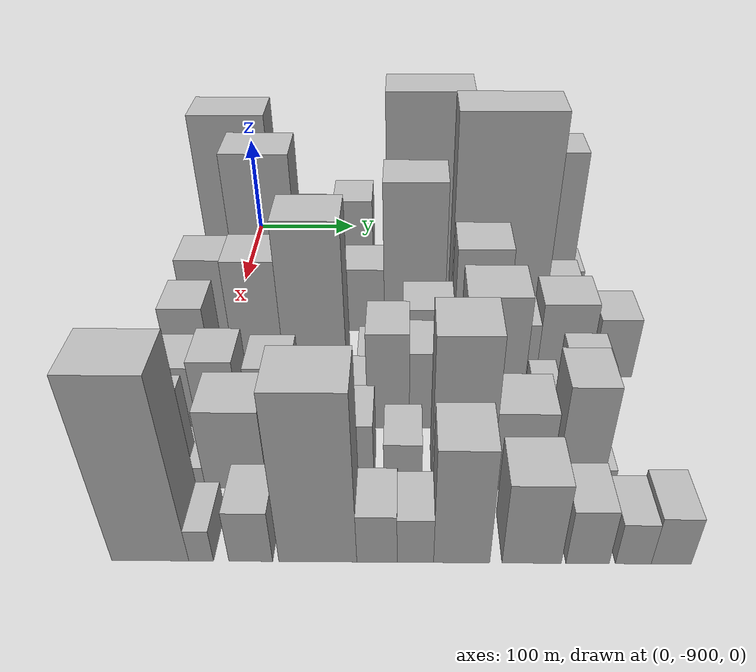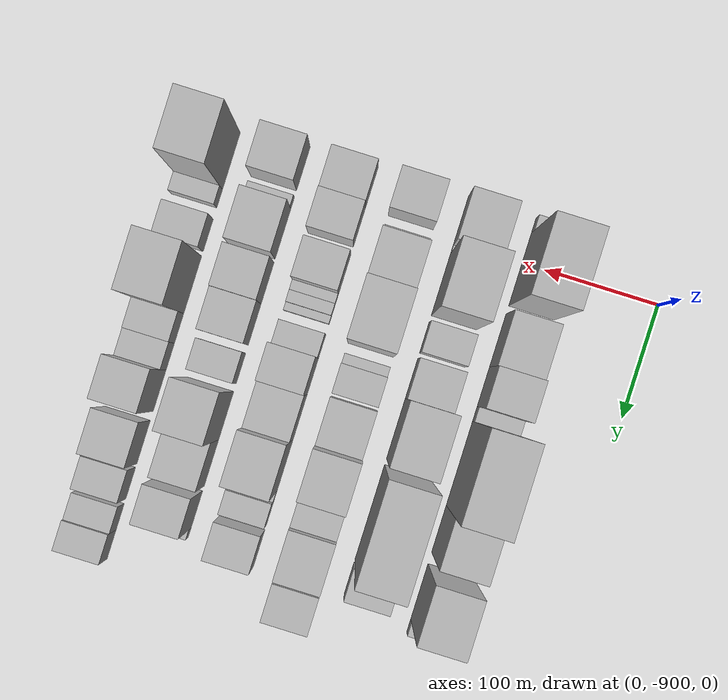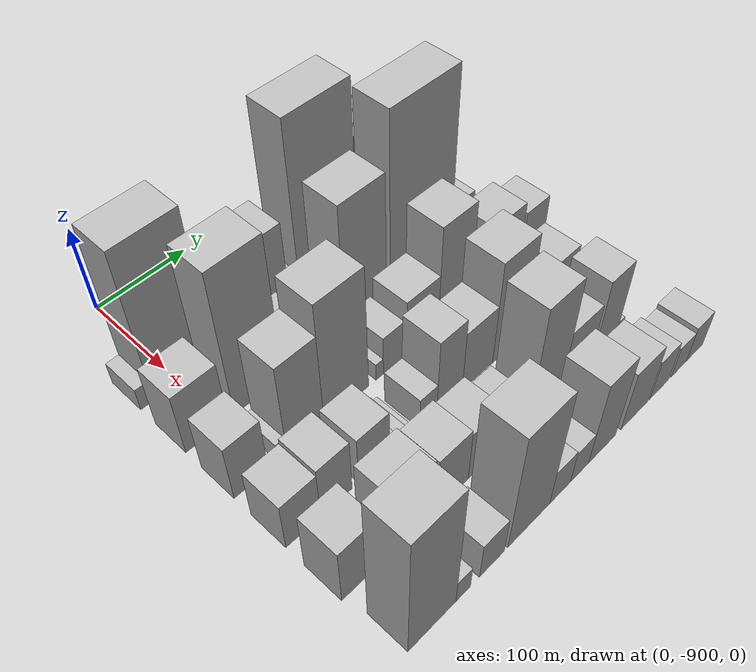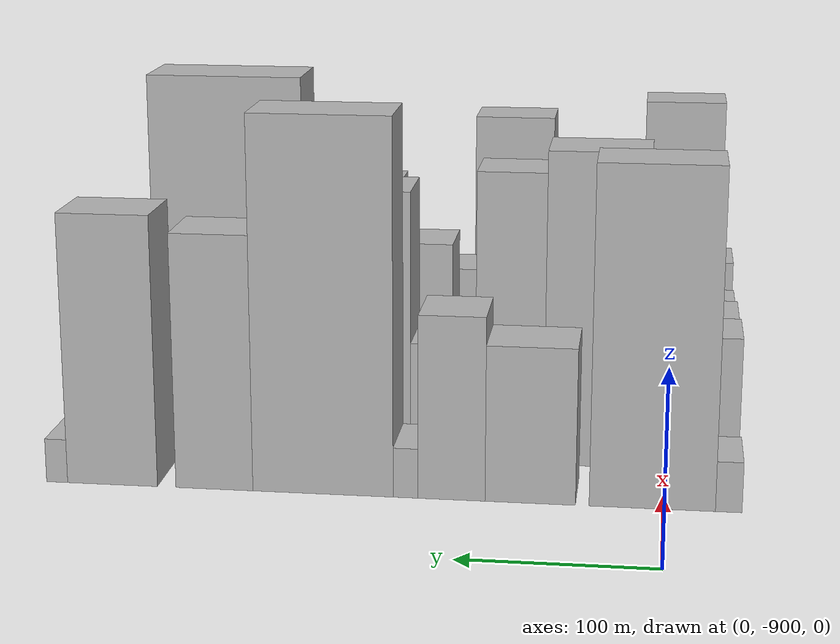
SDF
<sdf version="1.6">
 <world name="default">
  <model name="building_1">
   <static>1</static>
   <pose>100.0000 -933.2651 0 0.000000 0.000000 0.000000</pose>
   <link name="link">
    <pose>0 0 13.50 0 0 0</pose>
    <collision name="collision"><geometry><box><size>40.0000 13.4698 27.0000</size></box></geometry></collision>
    <visual name="visual">
     <cast_shadows>0</cast_shadows>
     <geometry><box><size>40.0000 13.4698 27.0000</size></box></geometry>
     <material>
      <script>
       <uri>model://HANNAS_wall/materials/scripts</uri>
       <uri>model://HANNAS_wall/materials/textures</uri>
       <name>vrc/HANNAS_wall</name>
      </script>
     </material>
    </visual>
   </link>
  </model>
  <model name="building_2">
   <static>1</static>
   <pose>100.0000 -894.2700 0 0.000000 0.000000 0.000000</pose>
   <link name="link">
    <pose>0 0 90.00 0 0 0</pose>
    <collision name="collision"><geometry><box><size>40.0000 64.5203 180.0000</size></box></geometry></collision>
    <visual name="visual">
     <cast_shadows>0</cast_shadows>
     <geometry><box><size>40.0000 64.5203 180.0000</size></box></geometry>
     <material>
      <script>
       <uri>model://HANNAS_wall/materials/scripts</uri>
       <uri>model://HANNAS_wall/materials/textures</uri>
       <name>vrc/HANNAS_wall</name>
      </script>
     </material>
    </visual>
   </link>
  </model>
  <model name="building_3">
   <static>1</static>
   <pose>100.0000 -831.5772 0 0.000000 0.000000 0.000000</pose>
   <link name="link">
    <pose>0 0 42.00 0 0 0</pose>
    <collision name="collision"><geometry><box><size>40.0000 46.8655 84.0000</size></box></geometry></collision>
    <visual name="visual">
     <cast_shadows>0</cast_shadows>
     <geometry><box><size>40.0000 46.8655 84.0000</size></box></geometry>
     <material>
      <script>
       <uri>model://HANNAS_wall/materials/scripts</uri>
       <uri>model://HANNAS_wall/materials/textures</uri>
       <name>vrc/HANNAS_wall</name>
      </script>
     </material>
    </visual>
   </link>
  </model>
  <model name="building_4">
   <static>1</static>
   <pose>100.0000 -790.6381 0 0.000000 0.000000 0.000000</pose>
   <link name="link">
    <pose>0 0 49.50 0 0 0</pose>
    <collision name="collision"><geometry><box><size>40.0000 35.0127 99.0000</size></box></geometry></collision>
    <visual name="visual">
     <cast_shadows>0</cast_shadows>
     <geometry><box><size>40.0000 35.0127 99.0000</size></box></geometry>
     <material>
      <script>
       <uri>model://HANNAS_wall/materials/scripts</uri>
       <uri>model://HANNAS_wall/materials/textures</uri>
       <name>vrc/HANNAS_wall</name>
      </script>
     </material>
    </visual>
   </link>
  </model>
  <model name="building_5">
   <static>1</static>
   <pose>100.0000 -766.5881 0 0.000000 0.000000 0.000000</pose>
   <link name="link">
    <pose>0 0 13.50 0 0 0</pose>
    <collision name="collision"><geometry><box><size>40.0000 13.0871 27.0000</size></box></geometry></collision>
    <visual name="visual">
     <cast_shadows>0</cast_shadows>
     <geometry><box><size>40.0000 13.0871 27.0000</size></box></geometry>
     <material>
      <script>
       <uri>model://HANNAS_wall/materials/scripts</uri>
       <uri>model://HANNAS_wall/materials/textures</uri>
       <name>vrc/HANNAS_wall</name>
      </script>
     </material>
    </visual>
   </link>
  </model>
  <model name="building_6">
   <static>1</static>
   <pose>100.0000 -722.7656 0 0.000000 0.000000 0.000000</pose>
   <link name="link">
    <pose>0 0 100.50 0 0 0</pose>
    <collision name="collision"><geometry><box><size>40.0000 74.5580 201.0000</size></box></geometry></collision>
    <visual name="visual">
     <cast_shadows>0</cast_shadows>
     <geometry><box><size>40.0000 74.5580 201.0000</size></box></geometry>
     <material>
      <script>
       <uri>model://HANNAS_wall/materials/scripts</uri>
       <uri>model://HANNAS_wall/materials/textures</uri>
       <name>vrc/HANNAS_wall</name>
      </script>
     </material>
    </visual>
   </link>
  </model>
  <model name="building_7">
   <static>1</static>
   <pose>100.0000 -664.7580 0 0.000000 0.000000 0.000000</pose>
   <link name="link">
    <pose>0 0 69.00 0 0 0</pose>
    <collision name="collision"><geometry><box><size>40.0000 41.4571 138.0000</size></box></geometry></collision>
    <visual name="visual">
     <cast_shadows>0</cast_shadows>
     <geometry><box><size>40.0000 41.4571 138.0000</size></box></geometry>
     <material>
      <script>
       <uri>model://HANNAS_wall/materials/scripts</uri>
       <uri>model://HANNAS_wall/materials/textures</uri>
       <name>vrc/HANNAS_wall</name>
      </script>
     </material>
    </visual>
   </link>
  </model>
  <model name="building_8">
   <static>1</static>
   <pose>100.0000 -609.5154 0 0.000000 0.000000 0.000000</pose>
   <link name="link">
    <pose>0 0 73.50 0 0 0</pose>
    <collision name="collision"><geometry><box><size>40.0000 49.0282 147.0000</size></box></geometry></collision>
    <visual name="visual">
     <cast_shadows>0</cast_shadows>
     <geometry><box><size>40.0000 49.0282 147.0000</size></box></geometry>
     <material>
      <script>
       <uri>model://HANNAS_wall/materials/scripts</uri>
       <uri>model://HANNAS_wall/materials/textures</uri>
       <name>vrc/HANNAS_wall</name>
      </script>
     </material>
    </visual>
   </link>
  </model>
  <model name="building_9">
   <static>1</static>
   <pose>100.0000 -579.2453 0 0.000000 0.000000 0.000000</pose>
   <link name="link">
    <pose>0 0 12.00 0 0 0</pose>
    <collision name="collision"><geometry><box><size>40.0000 11.5120 24.0000</size></box></geometry></collision>
    <visual name="visual">
     <cast_shadows>0</cast_shadows>
     <geometry><box><size>40.0000 11.5120 24.0000</size></box></geometry>
     <material>
      <script>
       <uri>model://HANNAS_wall/materials/scripts</uri>
       <uri>model://HANNAS_wall/materials/textures</uri>
       <name>vrc/HANNAS_wall</name>
      </script>
     </material>
    </visual>
   </link>
  </model>
  <model name="building_46">
   <static>1</static>
   <pose>160.0000 -917.8969 0 0.000000 0.000000 0.000000</pose>
   <link name="link">
    <pose>0 0 37.50 0 0 0</pose>
    <collision name="collision"><geometry><box><size>40.0000 44.2061 75.0000</size></box></geometry></collision>
    <visual name="visual">
     <cast_shadows>0</cast_shadows>
     <geometry><box><size>40.0000 44.2061 75.0000</size></box></geometry>
     <material>
      <script>
       <uri>model://HANNAS_wall/materials/scripts</uri>
       <uri>model://HANNAS_wall/materials/textures</uri>
       <name>vrc/HANNAS_wall</name>
      </script>
     </material>
    </visual>
   </link>
  </model>
  <model name="building_47">
   <static>1</static>
   <pose>160.0000 -892.5548 0 0.000000 0.000000 0.000000</pose>
   <link name="link">
    <pose>0 0 7.50 0 0 0</pose>
    <collision name="collision"><geometry><box><size>40.0000 6.4782 15.0000</size></box></geometry></collision>
    <visual name="visual">
     <cast_shadows>0</cast_shadows>
     <geometry><box><size>40.0000 6.4782 15.0000</size></box></geometry>
     <material>
      <script>
       <uri>model://HANNAS_wall/materials/scripts</uri>
       <uri>model://HANNAS_wall/materials/textures</uri>
       <name>vrc/HANNAS_wall</name>
      </script>
     </material>
    </visual>
   </link>
  </model>
  <model name="building_48">
   <static>1</static>
   <pose>160.0000 -861.9992 0 0.000000 0.000000 0.000000</pose>
   <link name="link">
    <pose>0 0 87.00 0 0 0</pose>
    <collision name="collision"><geometry><box><size>40.0000 54.6330 174.0000</size></box></geometry></collision>
    <visual name="visual">
     <cast_shadows>0</cast_shadows>
     <geometry><box><size>40.0000 54.6330 174.0000</size></box></geometry>
     <material>
      <script>
       <uri>model://HANNAS_wall/materials/scripts</uri>
       <uri>model://HANNAS_wall/materials/textures</uri>
       <name>vrc/HANNAS_wall</name>
      </script>
     </material>
    </visual>
   </link>
  </model>
  <model name="building_49">
   <static>1</static>
   <pose>160.0000 -815.1292 0 0.000000 0.000000 0.000000</pose>
   <link name="link">
    <pose>0 0 25.50 0 0 0</pose>
    <collision name="collision"><geometry><box><size>40.0000 27.1071 51.0000</size></box></geometry></collision>
    <visual name="visual">
     <cast_shadows>0</cast_shadows>
     <geometry><box><size>40.0000 27.1071 51.0000</size></box></geometry>
     <material>
      <script>
       <uri>model://HANNAS_wall/materials/scripts</uri>
       <uri>model://HANNAS_wall/materials/textures</uri>
       <name>vrc/HANNAS_wall</name>
      </script>
     </material>
    </visual>
   </link>
  </model>
  <model name="building_50">
   <static>1</static>
   <pose>160.0000 -779.0476 0 0.000000 0.000000 0.000000</pose>
   <link name="link">
    <pose>0 0 33.00 0 0 0</pose>
    <collision name="collision"><geometry><box><size>40.0000 35.0561 66.0000</size></box></geometry></collision>
    <visual name="visual">
     <cast_shadows>0</cast_shadows>
     <geometry><box><size>40.0000 35.0561 66.0000</size></box></geometry>
     <material>
      <script>
       <uri>model://HANNAS_wall/materials/scripts</uri>
       <uri>model://HANNAS_wall/materials/textures</uri>
       <name>vrc/HANNAS_wall</name>
      </script>
     </material>
    </visual>
   </link>
  </model>
  <model name="building_51">
   <static>1</static>
   <pose>160.0000 -734.7653 0 0.000000 0.000000 0.000000</pose>
   <link name="link">
    <pose>0 0 75.00 0 0 0</pose>
    <collision name="collision"><geometry><box><size>40.0000 53.5085 150.0000</size></box></geometry></collision>
    <visual name="visual">
     <cast_shadows>0</cast_shadows>
     <geometry><box><size>40.0000 53.5085 150.0000</size></box></geometry>
     <material>
      <script>
       <uri>model://HANNAS_wall/materials/scripts</uri>
       <uri>model://HANNAS_wall/materials/textures</uri>
       <name>vrc/HANNAS_wall</name>
      </script>
     </material>
    </visual>
   </link>
  </model>
  <model name="building_52">
   <static>1</static>
   <pose>160.0000 -661.3594 0 0.000000 0.000000 0.000000</pose>
   <link name="link">
    <pose>0 0 105.00 0 0 0</pose>
    <collision name="collision"><geometry><box><size>40.0000 83.3034 210.0000</size></box></geometry></collision>
    <visual name="visual">
     <cast_shadows>0</cast_shadows>
     <geometry><box><size>40.0000 83.3034 210.0000</size></box></geometry>
     <material>
      <script>
       <uri>model://HANNAS_wall/materials/scripts</uri>
       <uri>model://HANNAS_wall/materials/textures</uri>
       <name>vrc/HANNAS_wall</name>
      </script>
     </material>
    </visual>
   </link>
  </model>
  <model name="building_53">
   <static>1</static>
   <pose>160.0000 -602.5499 0 0.000000 0.000000 0.000000</pose>
   <link name="link">
    <pose>0 0 25.50 0 0 0</pose>
    <collision name="collision"><geometry><box><size>40.0000 28.3155 51.0000</size></box></geometry></collision>
    <visual name="visual">
     <cast_shadows>0</cast_shadows>
     <geometry><box><size>40.0000 28.3155 51.0000</size></box></geometry>
     <material>
      <script>
       <uri>model://HANNAS_wall/materials/scripts</uri>
       <uri>model://HANNAS_wall/materials/textures</uri>
       <name>vrc/HANNAS_wall</name>
      </script>
     </material>
    </visual>
   </link>
  </model>
  <model name="building_93">
   <static>1</static>
   <pose>220.0000 -922.2115 0 0.000000 0.000000 0.000000</pose>
   <link name="link">
    <pose>0 0 34.50 0 0 0</pose>
    <collision name="collision"><geometry><box><size>40.0000 35.5771 69.0000</size></box></geometry></collision>
    <visual name="visual">
     <cast_shadows>0</cast_shadows>
     <geometry><box><size>40.0000 35.5771 69.0000</size></box></geometry>
     <material>
      <script>
       <uri>model://HANNAS_wall/materials/scripts</uri>
       <uri>model://HANNAS_wall/materials/textures</uri>
       <name>vrc/HANNAS_wall</name>
      </script>
     </material>
    </visual>
   </link>
  </model>
  <model name="building_94">
   <static>1</static>
   <pose>220.0000 -889.5481 0 0.000000 0.000000 0.000000</pose>
   <link name="link">
    <pose>0 0 12.00 0 0 0</pose>
    <collision name="collision"><geometry><box><size>40.0000 9.7497 24.0000</size></box></geometry></collision>
    <visual name="visual">
     <cast_shadows>0</cast_shadows>
     <geometry><box><size>40.0000 9.7497 24.0000</size></box></geometry>
     <material>
      <script>
       <uri>model://HANNAS_wall/materials/scripts</uri>
       <uri>model://HANNAS_wall/materials/textures</uri>
       <name>vrc/HANNAS_wall</name>
      </script>
     </material>
    </visual>
   </link>
  </model>
  <model name="building_95">
   <static>1</static>
   <pose>220.0000 -864.0778 0 0.000000 0.000000 0.000000</pose>
   <link name="link">
    <pose>0 0 57.00 0 0 0</pose>
    <collision name="collision"><geometry><box><size>40.0000 41.1908 114.0000</size></box></geometry></collision>
    <visual name="visual">
     <cast_shadows>0</cast_shadows>
     <geometry><box><size>40.0000 41.1908 114.0000</size></box></geometry>
     <material>
      <script>
       <uri>model://HANNAS_wall/materials/scripts</uri>
       <uri>model://HANNAS_wall/materials/textures</uri>
       <name>vrc/HANNAS_wall</name>
      </script>
     </material>
    </visual>
   </link>
  </model>
  <model name="building_96">
   <static>1</static>
   <pose>220.0000 -817.5192 0 0.000000 0.000000 0.000000</pose>
   <link name="link">
    <pose>0 0 75.00 0 0 0</pose>
    <collision name="collision"><geometry><box><size>40.0000 51.9264 150.0000</size></box></geometry></collision>
    <visual name="visual">
     <cast_shadows>0</cast_shadows>
     <geometry><box><size>40.0000 51.9264 150.0000</size></box></geometry>
     <material>
      <script>
       <uri>model://HANNAS_wall/materials/scripts</uri>
       <uri>model://HANNAS_wall/materials/textures</uri>
       <name>vrc/HANNAS_wall</name>
      </script>
     </material>
    </visual>
   </link>
  </model>
  <model name="building_97">
   <static>1</static>
   <pose>220.0000 -778.0664 0 0.000000 0.000000 0.000000</pose>
   <link name="link">
    <pose>0 0 10.50 0 0 0</pose>
    <collision name="collision"><geometry><box><size>40.0000 8.9793 21.0000</size></box></geometry></collision>
    <visual name="visual">
     <cast_shadows>0</cast_shadows>
     <geometry><box><size>40.0000 8.9793 21.0000</size></box></geometry>
     <material>
      <script>
       <uri>model://HANNAS_wall/materials/scripts</uri>
       <uri>model://HANNAS_wall/materials/textures</uri>
       <name>vrc/HANNAS_wall</name>
      </script>
     </material>
    </visual>
   </link>
  </model>
  <model name="building_98">
   <static>1</static>
   <pose>220.0000 -760.6428 0 0.000000 0.000000 0.000000</pose>
   <link name="link">
    <pose>0 0 24.00 0 0 0</pose>
    <collision name="collision"><geometry><box><size>40.0000 25.8678 48.0000</size></box></geometry></collision>
    <visual name="visual">
     <cast_shadows>0</cast_shadows>
     <geometry><box><size>40.0000 25.8678 48.0000</size></box></geometry>
     <material>
      <script>
       <uri>model://HANNAS_wall/materials/scripts</uri>
       <uri>model://HANNAS_wall/materials/textures</uri>
       <name>vrc/HANNAS_wall</name>
      </script>
     </material>
    </visual>
   </link>
  </model>
  <model name="building_99">
   <static>1</static>
   <pose>220.0000 -724.1850 0 0.000000 0.000000 0.000000</pose>
   <link name="link">
    <pose>0 0 34.50 0 0 0</pose>
    <collision name="collision"><geometry><box><size>40.0000 41.0480 69.0000</size></box></geometry></collision>
    <visual name="visual">
     <cast_shadows>0</cast_shadows>
     <geometry><box><size>40.0000 41.0480 69.0000</size></box></geometry>
     <material>
      <script>
       <uri>model://HANNAS_wall/materials/scripts</uri>
       <uri>model://HANNAS_wall/materials/textures</uri>
       <name>vrc/HANNAS_wall</name>
      </script>
     </material>
    </visual>
   </link>
  </model>
  <model name="building_100">
   <static>1</static>
   <pose>220.0000 -682.2053 0 0.000000 0.000000 0.000000</pose>
   <link name="link">
    <pose>0 0 63.00 0 0 0</pose>
    <collision name="collision"><geometry><box><size>40.0000 42.9113 126.0000</size></box></geometry></collision>
    <visual name="visual">
     <cast_shadows>0</cast_shadows>
     <geometry><box><size>40.0000 42.9113 126.0000</size></box></geometry>
     <material>
      <script>
       <uri>model://HANNAS_wall/materials/scripts</uri>
       <uri>model://HANNAS_wall/materials/textures</uri>
       <name>vrc/HANNAS_wall</name>
      </script>
     </material>
    </visual>
   </link>
  </model>
  <model name="building_101">
   <static>1</static>
   <pose>220.0000 -647.1093 0 0.000000 0.000000 0.000000</pose>
   <link name="link">
    <pose>0 0 27.00 0 0 0</pose>
    <collision name="collision"><geometry><box><size>40.0000 27.2807 54.0000</size></box></geometry></collision>
    <visual name="visual">
     <cast_shadows>0</cast_shadows>
     <geometry><box><size>40.0000 27.2807 54.0000</size></box></geometry>
     <material>
      <script>
       <uri>model://HANNAS_wall/materials/scripts</uri>
       <uri>model://HANNAS_wall/materials/textures</uri>
       <name>vrc/HANNAS_wall</name>
      </script>
     </material>
    </visual>
   </link>
  </model>
  <model name="building_102">
   <static>1</static>
   <pose>220.0000 -611.4339 0 0.000000 0.000000 0.000000</pose>
   <link name="link">
    <pose>0 0 37.50 0 0 0</pose>
    <collision name="collision"><geometry><box><size>40.0000 44.0702 75.0000</size></box></geometry></collision>
    <visual name="visual">
     <cast_shadows>0</cast_shadows>
     <geometry><box><size>40.0000 44.0702 75.0000</size></box></geometry>
     <material>
      <script>
       <uri>model://HANNAS_wall/materials/scripts</uri>
       <uri>model://HANNAS_wall/materials/textures</uri>
       <name>vrc/HANNAS_wall</name>
      </script>
     </material>
    </visual>
   </link>
  </model>
  <model name="building_103">
   <static>1</static>
   <pose>220.0000 -570.0541 0 0.000000 0.000000 0.000000</pose>
   <link name="link">
    <pose>0 0 30.00 0 0 0</pose>
    <collision name="collision"><geometry><box><size>40.0000 32.6894 60.0000</size></box></geometry></collision>
    <visual name="visual">
     <cast_shadows>0</cast_shadows>
     <geometry><box><size>40.0000 32.6894 60.0000</size></box></geometry>
     <material>
      <script>
       <uri>model://HANNAS_wall/materials/scripts</uri>
       <uri>model://HANNAS_wall/materials/textures</uri>
       <name>vrc/HANNAS_wall</name>
      </script>
     </material>
    </visual>
   </link>
  </model>
  <model name="building_145">
   <static>1</static>
   <pose>280.0000 -922.0316 0 0.000000 0.000000 0.000000</pose>
   <link name="link">
    <pose>0 0 30.00 0 0 0</pose>
    <collision name="collision"><geometry><box><size>40.0000 35.9369 60.0000</size></box></geometry></collision>
    <visual name="visual">
     <cast_shadows>0</cast_shadows>
     <geometry><box><size>40.0000 35.9369 60.0000</size></box></geometry>
     <material>
      <script>
       <uri>model://HANNAS_wall/materials/scripts</uri>
       <uri>model://HANNAS_wall/materials/textures</uri>
       <name>vrc/HANNAS_wall</name>
      </script>
     </material>
    </visual>
   </link>
  </model>
  <model name="building_146">
   <static>1</static>
   <pose>280.0000 -887.1645 0 0.000000 0.000000 0.000000</pose>
   <link name="link">
    <pose>0 0 33.00 0 0 0</pose>
    <collision name="collision"><geometry><box><size>40.0000 33.7974 66.0000</size></box></geometry></collision>
    <visual name="visual">
     <cast_shadows>0</cast_shadows>
     <geometry><box><size>40.0000 33.7974 66.0000</size></box></geometry>
     <material>
      <script>
       <uri>model://HANNAS_wall/materials/scripts</uri>
       <uri>model://HANNAS_wall/materials/textures</uri>
       <name>vrc/HANNAS_wall</name>
      </script>
     </material>
    </visual>
   </link>
  </model>
  <model name="building_147">
   <static>1</static>
   <pose>280.0000 -845.7232 0 0.000000 0.000000 0.000000</pose>
   <link name="link">
    <pose>0 0 30.00 0 0 0</pose>
    <collision name="collision"><geometry><box><size>40.0000 35.0851 60.0000</size></box></geometry></collision>
    <visual name="visual">
     <cast_shadows>0</cast_shadows>
     <geometry><box><size>40.0000 35.0851 60.0000</size></box></geometry>
     <material>
      <script>
       <uri>model://HANNAS_wall/materials/scripts</uri>
       <uri>model://HANNAS_wall/materials/textures</uri>
       <name>vrc/HANNAS_wall</name>
      </script>
     </material>
    </visual>
   </link>
  </model>
  <model name="building_148">
   <static>1</static>
   <pose>280.0000 -823.7832 0 0.000000 0.000000 0.000000</pose>
   <link name="link">
    <pose>0 0 10.50 0 0 0</pose>
    <collision name="collision"><geometry><box><size>40.0000 8.7948 21.0000</size></box></geometry></collision>
    <visual name="visual">
     <cast_shadows>0</cast_shadows>
     <geometry><box><size>40.0000 8.7948 21.0000</size></box></geometry>
     <material>
      <script>
       <uri>model://HANNAS_wall/materials/scripts</uri>
       <uri>model://HANNAS_wall/materials/textures</uri>
       <name>vrc/HANNAS_wall</name>
      </script>
     </material>
    </visual>
   </link>
  </model>
  <model name="building_149">
   <static>1</static>
   <pose>280.0000 -814.1563 0 0.000000 0.000000 0.000000</pose>
   <link name="link">
    <pose>0 0 10.50 0 0 0</pose>
    <collision name="collision"><geometry><box><size>40.0000 10.4590 21.0000</size></box></geometry></collision>
    <visual name="visual">
     <cast_shadows>0</cast_shadows>
     <geometry><box><size>40.0000 10.4590 21.0000</size></box></geometry>
     <material>
      <script>
       <uri>model://HANNAS_wall/materials/scripts</uri>
       <uri>model://HANNAS_wall/materials/textures</uri>
       <name>vrc/HANNAS_wall</name>
      </script>
     </material>
    </visual>
   </link>
  </model>
  <model name="building_150">
   <static>1</static>
   <pose>280.0000 -805.3285 0 0.000000 0.000000 0.000000</pose>
   <link name="link">
    <pose>0 0 7.50 0 0 0</pose>
    <collision name="collision"><geometry><box><size>40.0000 7.1966 15.0000</size></box></geometry></collision>
    <visual name="visual">
     <cast_shadows>0</cast_shadows>
     <geometry><box><size>40.0000 7.1966 15.0000</size></box></geometry>
     <material>
      <script>
       <uri>model://HANNAS_wall/materials/scripts</uri>
       <uri>model://HANNAS_wall/materials/textures</uri>
       <name>vrc/HANNAS_wall</name>
      </script>
     </material>
    </visual>
   </link>
  </model>
  <model name="building_151">
   <static>1</static>
   <pose>280.0000 -782.2149 0 0.000000 0.000000 0.000000</pose>
   <link name="link">
    <pose>0 0 19.50 0 0 0</pose>
    <collision name="collision"><geometry><box><size>40.0000 21.0306 39.0000</size></box></geometry></collision>
    <visual name="visual">
     <cast_shadows>0</cast_shadows>
     <geometry><box><size>40.0000 21.0306 39.0000</size></box></geometry>
     <material>
      <script>
       <uri>model://HANNAS_wall/materials/scripts</uri>
       <uri>model://HANNAS_wall/materials/textures</uri>
       <name>vrc/HANNAS_wall</name>
      </script>
     </material>
    </visual>
   </link>
  </model>
  <model name="building_152">
   <static>1</static>
   <pose>280.0000 -755.6947 0 0.000000 0.000000 0.000000</pose>
   <link name="link">
    <pose>0 0 46.50 0 0 0</pose>
    <collision name="collision"><geometry><box><size>40.0000 32.0099 93.0000</size></box></geometry></collision>
    <visual name="visual">
     <cast_shadows>0</cast_shadows>
     <geometry><box><size>40.0000 32.0099 93.0000</size></box></geometry>
     <material>
      <script>
       <uri>model://HANNAS_wall/materials/scripts</uri>
       <uri>model://HANNAS_wall/materials/textures</uri>
       <name>vrc/HANNAS_wall</name>
      </script>
     </material>
    </visual>
   </link>
  </model>
  <model name="building_153">
   <static>1</static>
   <pose>280.0000 -719.8536 0 0.000000 0.000000 0.000000</pose>
   <link name="link">
    <pose>0 0 37.50 0 0 0</pose>
    <collision name="collision"><geometry><box><size>40.0000 39.6723 75.0000</size></box></geometry></collision>
    <visual name="visual">
     <cast_shadows>0</cast_shadows>
     <geometry><box><size>40.0000 39.6723 75.0000</size></box></geometry>
     <material>
      <script>
       <uri>model://HANNAS_wall/materials/scripts</uri>
       <uri>model://HANNAS_wall/materials/textures</uri>
       <name>vrc/HANNAS_wall</name>
      </script>
     </material>
    </visual>
   </link>
  </model>
  <model name="building_154">
   <static>1</static>
   <pose>280.0000 -677.2210 0 0.000000 0.000000 0.000000</pose>
   <link name="link">
    <pose>0 0 63.00 0 0 0</pose>
    <collision name="collision"><geometry><box><size>40.0000 45.5928 126.0000</size></box></geometry></collision>
    <visual name="visual">
     <cast_shadows>0</cast_shadows>
     <geometry><box><size>40.0000 45.5928 126.0000</size></box></geometry>
     <material>
      <script>
       <uri>model://HANNAS_wall/materials/scripts</uri>
       <uri>model://HANNAS_wall/materials/textures</uri>
       <name>vrc/HANNAS_wall</name>
      </script>
     </material>
    </visual>
   </link>
  </model>
  <model name="building_155">
   <static>1</static>
   <pose>280.0000 -649.9774 0 0.000000 0.000000 0.000000</pose>
   <link name="link">
    <pose>0 0 9.00 0 0 0</pose>
    <collision name="collision"><geometry><box><size>40.0000 8.8945 18.0000</size></box></geometry></collision>
    <visual name="visual">
     <cast_shadows>0</cast_shadows>
     <geometry><box><size>40.0000 8.8945 18.0000</size></box></geometry>
     <material>
      <script>
       <uri>model://HANNAS_wall/materials/scripts</uri>
       <uri>model://HANNAS_wall/materials/textures</uri>
       <name>vrc/HANNAS_wall</name>
      </script>
     </material>
    </visual>
   </link>
  </model>
  <model name="building_156">
   <static>1</static>
   <pose>280.0000 -634.8237 0 0.000000 0.000000 0.000000</pose>
   <link name="link">
    <pose>0 0 18.00 0 0 0</pose>
    <collision name="collision"><geometry><box><size>40.0000 21.4129 36.0000</size></box></geometry></collision>
    <visual name="visual">
     <cast_shadows>0</cast_shadows>
     <geometry><box><size>40.0000 21.4129 36.0000</size></box></geometry>
     <material>
      <script>
       <uri>model://HANNAS_wall/materials/scripts</uri>
       <uri>model://HANNAS_wall/materials/textures</uri>
       <name>vrc/HANNAS_wall</name>
      </script>
     </material>
    </visual>
   </link>
  </model>
  <model name="building_157">
   <static>1</static>
   <pose>280.0000 -603.8364 0 0.000000 0.000000 0.000000</pose>
   <link name="link">
    <pose>0 0 31.50 0 0 0</pose>
    <collision name="collision"><geometry><box><size>40.0000 32.5616 63.0000</size></box></geometry></collision>
    <visual name="visual">
     <cast_shadows>0</cast_shadows>
     <geometry><box><size>40.0000 32.5616 63.0000</size></box></geometry>
     <material>
      <script>
       <uri>model://HANNAS_wall/materials/scripts</uri>
       <uri>model://HANNAS_wall/materials/textures</uri>
       <name>vrc/HANNAS_wall</name>
      </script>
     </material>
    </visual>
   </link>
  </model>
  <model name="building_206">
   <static>1</static>
   <pose>340.0000 -920.7034 0 0.000000 0.000000 0.000000</pose>
   <link name="link">
    <pose>0 0 36.00 0 0 0</pose>
    <collision name="collision"><geometry><box><size>40.0000 38.5933 72.0000</size></box></geometry></collision>
    <visual name="visual">
     <cast_shadows>0</cast_shadows>
     <geometry><box><size>40.0000 38.5933 72.0000</size></box></geometry>
     <material>
      <script>
       <uri>model://HANNAS_wall/materials/scripts</uri>
       <uri>model://HANNAS_wall/materials/textures</uri>
       <name>vrc/HANNAS_wall</name>
      </script>
     </material>
    </visual>
   </link>
  </model>
  <model name="building_207">
   <static>1</static>
   <pose>340.0000 -890.2643 0 0.000000 0.000000 0.000000</pose>
   <link name="link">
    <pose>0 0 10.50 0 0 0</pose>
    <collision name="collision"><geometry><box><size>40.0000 10.2849 21.0000</size></box></geometry></collision>
    <visual name="visual">
     <cast_shadows>0</cast_shadows>
     <geometry><box><size>40.0000 10.2849 21.0000</size></box></geometry>
     <material>
      <script>
       <uri>model://HANNAS_wall/materials/scripts</uri>
       <uri>model://HANNAS_wall/materials/textures</uri>
       <name>vrc/HANNAS_wall</name>
      </script>
     </material>
    </visual>
   </link>
  </model>
  <model name="building_208">
   <static>1</static>
   <pose>340.0000 -862.9969 0 0.000000 0.000000 0.000000</pose>
   <link name="link">
    <pose>0 0 37.50 0 0 0</pose>
    <collision name="collision"><geometry><box><size>40.0000 44.2498 75.0000</size></box></geometry></collision>
    <visual name="visual">
     <cast_shadows>0</cast_shadows>
     <geometry><box><size>40.0000 44.2498 75.0000</size></box></geometry>
     <material>
      <script>
       <uri>model://HANNAS_wall/materials/scripts</uri>
       <uri>model://HANNAS_wall/materials/textures</uri>
       <name>vrc/HANNAS_wall</name>
      </script>
     </material>
    </visual>
   </link>
  </model>
  <model name="building_209">
   <static>1</static>
   <pose>340.0000 -819.4858 0 0.000000 0.000000 0.000000</pose>
   <link name="link">
    <pose>0 0 34.50 0 0 0</pose>
    <collision name="collision"><geometry><box><size>40.0000 36.7725 69.0000</size></box></geometry></collision>
    <visual name="visual">
     <cast_shadows>0</cast_shadows>
     <geometry><box><size>40.0000 36.7725 69.0000</size></box></geometry>
     <material>
      <script>
       <uri>model://HANNAS_wall/materials/scripts</uri>
       <uri>model://HANNAS_wall/materials/textures</uri>
       <name>vrc/HANNAS_wall</name>
      </script>
     </material>
    </visual>
   </link>
  </model>
  <model name="building_210">
   <static>1</static>
   <pose>340.0000 -782.9103 0 0.000000 0.000000 0.000000</pose>
   <link name="link">
    <pose>0 0 31.50 0 0 0</pose>
    <collision name="collision"><geometry><box><size>40.0000 36.3784 63.0000</size></box></geometry></collision>
    <visual name="visual">
     <cast_shadows>0</cast_shadows>
     <geometry><box><size>40.0000 36.3784 63.0000</size></box></geometry>
     <material>
      <script>
       <uri>model://HANNAS_wall/materials/scripts</uri>
       <uri>model://HANNAS_wall/materials/textures</uri>
       <name>vrc/HANNAS_wall</name>
      </script>
     </material>
    </visual>
   </link>
  </model>
  <model name="building_211">
   <static>1</static>
   <pose>340.0000 -744.2791 0 0.000000 0.000000 0.000000</pose>
   <link name="link">
    <pose>0 0 22.50 0 0 0</pose>
    <collision name="collision"><geometry><box><size>40.0000 26.8839 45.0000</size></box></geometry></collision>
    <visual name="visual">
     <cast_shadows>0</cast_shadows>
     <geometry><box><size>40.0000 26.8839 45.0000</size></box></geometry>
     <material>
      <script>
       <uri>model://HANNAS_wall/materials/scripts</uri>
       <uri>model://HANNAS_wall/materials/textures</uri>
       <name>vrc/HANNAS_wall</name>
      </script>
     </material>
    </visual>
   </link>
  </model>
  <model name="building_212">
   <static>1</static>
   <pose>340.0000 -702.3982 0 0.000000 0.000000 0.000000</pose>
   <link name="link">
    <pose>0 0 70.50 0 0 0</pose>
    <collision name="collision"><geometry><box><size>40.0000 42.8780 141.0000</size></box></geometry></collision>
    <visual name="visual">
     <cast_shadows>0</cast_shadows>
     <geometry><box><size>40.0000 42.8780 141.0000</size></box></geometry>
     <material>
      <script>
       <uri>model://HANNAS_wall/materials/scripts</uri>
       <uri>model://HANNAS_wall/materials/textures</uri>
       <name>vrc/HANNAS_wall</name>
      </script>
     </material>
    </visual>
   </link>
  </model>
  <model name="building_213">
   <static>1</static>
   <pose>340.0000 -660.4320 0 0.000000 0.000000 0.000000</pose>
   <link name="link">
    <pose>0 0 37.50 0 0 0</pose>
    <collision name="collision"><geometry><box><size>40.0000 41.0543 75.0000</size></box></geometry></collision>
    <visual name="visual">
     <cast_shadows>0</cast_shadows>
     <geometry><box><size>40.0000 41.0543 75.0000</size></box></geometry>
     <material>
      <script>
       <uri>model://HANNAS_wall/materials/scripts</uri>
       <uri>model://HANNAS_wall/materials/textures</uri>
       <name>vrc/HANNAS_wall</name>
      </script>
     </material>
    </visual>
   </link>
  </model>
  <model name="building_214">
   <static>1</static>
   <pose>340.0000 -619.3243 0 0.000000 0.000000 0.000000</pose>
   <link name="link">
    <pose>0 0 49.50 0 0 0</pose>
    <collision name="collision"><geometry><box><size>40.0000 33.1610 99.0000</size></box></geometry></collision>
    <visual name="visual">
     <cast_shadows>0</cast_shadows>
     <geometry><box><size>40.0000 33.1610 99.0000</size></box></geometry>
     <material>
      <script>
       <uri>model://HANNAS_wall/materials/scripts</uri>
       <uri>model://HANNAS_wall/materials/textures</uri>
       <name>vrc/HANNAS_wall</name>
      </script>
     </material>
    </visual>
   </link>
  </model>
  <model name="building_215">
   <static>1</static>
   <pose>340.0000 -598.4500 0 0.000000 0.000000 0.000000</pose>
   <link name="link">
    <pose>0 0 10.50 0 0 0</pose>
    <collision name="collision"><geometry><box><size>40.0000 8.5875 21.0000</size></box></geometry></collision>
    <visual name="visual">
     <cast_shadows>0</cast_shadows>
     <geometry><box><size>40.0000 8.5875 21.0000</size></box></geometry>
     <material>
      <script>
       <uri>model://HANNAS_wall/materials/scripts</uri>
       <uri>model://HANNAS_wall/materials/textures</uri>
       <name>vrc/HANNAS_wall</name>
      </script>
     </material>
    </visual>
   </link>
  </model>
  <model name="building_257">
   <static>1</static>
   <pose>400.0000 -908.8026 0 0.000000 0.000000 0.000000</pose>
   <link name="link">
    <pose>0 0 81.00 0 0 0</pose>
    <collision name="collision"><geometry><box><size>40.0000 50.3948 162.0000</size></box></geometry></collision>
    <visual name="visual">
     <cast_shadows>0</cast_shadows>
     <geometry><box><size>40.0000 50.3948 162.0000</size></box></geometry>
     <material>
      <script>
       <uri>model://HANNAS_wall/materials/scripts</uri>
       <uri>model://HANNAS_wall/materials/textures</uri>
       <name>vrc/HANNAS_wall</name>
      </script>
     </material>
    </visual>
   </link>
  </model>
  <model name="building_258">
   <static>1</static>
   <pose>400.0000 -875.5279 0 0.000000 0.000000 0.000000</pose>
   <link name="link">
    <pose>0 0 15.00 0 0 0</pose>
    <collision name="collision"><geometry><box><size>40.0000 16.1546 30.0000</size></box></geometry></collision>
    <visual name="visual">
     <cast_shadows>0</cast_shadows>
     <geometry><box><size>40.0000 16.1546 30.0000</size></box></geometry>
     <material>
      <script>
       <uri>model://HANNAS_wall/materials/scripts</uri>
       <uri>model://HANNAS_wall/materials/textures</uri>
       <name>vrc/HANNAS_wall</name>
      </script>
     </material>
    </visual>
   </link>
  </model>
  <model name="building_259">
   <static>1</static>
   <pose>400.0000 -843.1466 0 0.000000 0.000000 0.000000</pose>
   <link name="link">
    <pose>0 0 24.00 0 0 0</pose>
    <collision name="collision"><geometry><box><size>40.0000 28.6080 48.0000</size></box></geometry></collision>
    <visual name="visual">
     <cast_shadows>0</cast_shadows>
     <geometry><box><size>40.0000 28.6080 48.0000</size></box></geometry>
     <material>
      <script>
       <uri>model://HANNAS_wall/materials/scripts</uri>
       <uri>model://HANNAS_wall/materials/textures</uri>
       <name>vrc/HANNAS_wall</name>
      </script>
     </material>
    </visual>
   </link>
  </model>
  <model name="building_260">
   <static>1</static>
   <pose>400.0000 -799.4134 0 0.000000 0.000000 0.000000</pose>
   <link name="link">
    <pose>0 0 75.00 0 0 0</pose>
    <collision name="collision"><geometry><box><size>40.0000 50.8583 150.0000</size></box></geometry></collision>
    <visual name="visual">
     <cast_shadows>0</cast_shadows>
     <geometry><box><size>40.0000 50.8583 150.0000</size></box></geometry>
     <material>
      <script>
       <uri>model://HANNAS_wall/materials/scripts</uri>
       <uri>model://HANNAS_wall/materials/textures</uri>
       <name>vrc/HANNAS_wall</name>
      </script>
     </material>
    </visual>
   </link>
  </model>
  <model name="building_261">
   <static>1</static>
   <pose>400.0000 -760.8719 0 0.000000 0.000000 0.000000</pose>
   <link name="link">
    <pose>0 0 22.50 0 0 0</pose>
    <collision name="collision"><geometry><box><size>40.0000 26.2246 45.0000</size></box></geometry></collision>
    <visual name="visual">
     <cast_shadows>0</cast_shadows>
     <geometry><box><size>40.0000 26.2246 45.0000</size></box></geometry>
     <material>
      <script>
       <uri>model://HANNAS_wall/materials/scripts</uri>
       <uri>model://HANNAS_wall/materials/textures</uri>
       <name>vrc/HANNAS_wall</name>
      </script>
     </material>
    </visual>
   </link>
  </model>
  <model name="building_262">
   <static>1</static>
   <pose>400.0000 -735.8819 0 0.000000 0.000000 0.000000</pose>
   <link name="link">
    <pose>0 0 21.00 0 0 0</pose>
    <collision name="collision"><geometry><box><size>40.0000 23.7555 42.0000</size></box></geometry></collision>
    <visual name="visual">
     <cast_shadows>0</cast_shadows>
     <geometry><box><size>40.0000 23.7555 42.0000</size></box></geometry>
     <material>
      <script>
       <uri>model://HANNAS_wall/materials/scripts</uri>
       <uri>model://HANNAS_wall/materials/textures</uri>
       <name>vrc/HANNAS_wall</name>
      </script>
     </material>
    </visual>
   </link>
  </model>
  <model name="building_263">
   <static>1</static>
   <pose>400.0000 -705.7448 0 0.000000 0.000000 0.000000</pose>
   <link name="link">
    <pose>0 0 52.50 0 0 0</pose>
    <collision name="collision"><geometry><box><size>40.0000 36.5186 105.0000</size></box></geometry></collision>
    <visual name="visual">
     <cast_shadows>0</cast_shadows>
     <geometry><box><size>40.0000 36.5186 105.0000</size></box></geometry>
     <material>
      <script>
       <uri>model://HANNAS_wall/materials/scripts</uri>
       <uri>model://HANNAS_wall/materials/textures</uri>
       <name>vrc/HANNAS_wall</name>
      </script>
     </material>
    </visual>
   </link>
  </model>
  <model name="building_264">
   <static>1</static>
   <pose>400.0000 -660.2241 0 0.000000 0.000000 0.000000</pose>
   <link name="link">
    <pose>0 0 37.50 0 0 0</pose>
    <collision name="collision"><geometry><box><size>40.0000 38.5229 75.0000</size></box></geometry></collision>
    <visual name="visual">
     <cast_shadows>0</cast_shadows>
     <geometry><box><size>40.0000 38.5229 75.0000</size></box></geometry>
     <material>
      <script>
       <uri>model://HANNAS_wall/materials/scripts</uri>
       <uri>model://HANNAS_wall/materials/textures</uri>
       <name>vrc/HANNAS_wall</name>
      </script>
     </material>
    </visual>
   </link>
  </model>
  <model name="building_265">
   <static>1</static>
   <pose>400.0000 -623.8929 0 0.000000 0.000000 0.000000</pose>
   <link name="link">
    <pose>0 0 25.50 0 0 0</pose>
    <collision name="collision"><geometry><box><size>40.0000 28.1396 51.0000</size></box></geometry></collision>
    <visual name="visual">
     <cast_shadows>0</cast_shadows>
     <geometry><box><size>40.0000 28.1396 51.0000</size></box></geometry>
     <material>
      <script>
       <uri>model://HANNAS_wall/materials/scripts</uri>
       <uri>model://HANNAS_wall/materials/textures</uri>
       <name>vrc/HANNAS_wall</name>
      </script>
     </material>
    </visual>
   </link>
  </model>
  <model name="building_266">
   <static>1</static>
   <pose>400.0000 -594.1709 0 0.000000 0.000000 0.000000</pose>
   <link name="link">
    <pose>0 0 19.50 0 0 0</pose>
    <collision name="collision"><geometry><box><size>40.0000 23.3043 39.0000</size></box></geometry></collision>
    <visual name="visual">
     <cast_shadows>0</cast_shadows>
     <geometry><box><size>40.0000 23.3043 39.0000</size></box></geometry>
     <material>
      <script>
       <uri>model://HANNAS_wall/materials/scripts</uri>
       <uri>model://HANNAS_wall/materials/textures</uri>
       <name>vrc/HANNAS_wall</name>
      </script>
     </material>
    </visual>
   </link>
  </model>
  <model name="building_267">
   <static>1</static>
   <pose>400.0000 -569.5501 0 0.000000 0.000000 0.000000</pose>
   <link name="link">
    <pose>0 0 22.50 0 0 0</pose>
    <collision name="collision"><geometry><box><size>40.0000 25.9375 45.0000</size></box></geometry></collision>
    <visual name="visual">
     <cast_shadows>0</cast_shadows>
     <geometry><box><size>40.0000 25.9375 45.0000</size></box></geometry>
     <material>
      <script>
       <uri>model://HANNAS_wall/materials/scripts</uri>
       <uri>model://HANNAS_wall/materials/textures</uri>
       <name>vrc/HANNAS_wall</name>
      </script>
     </material>
    </visual>
   </link>
  </model>
 </world>
</sdf>
